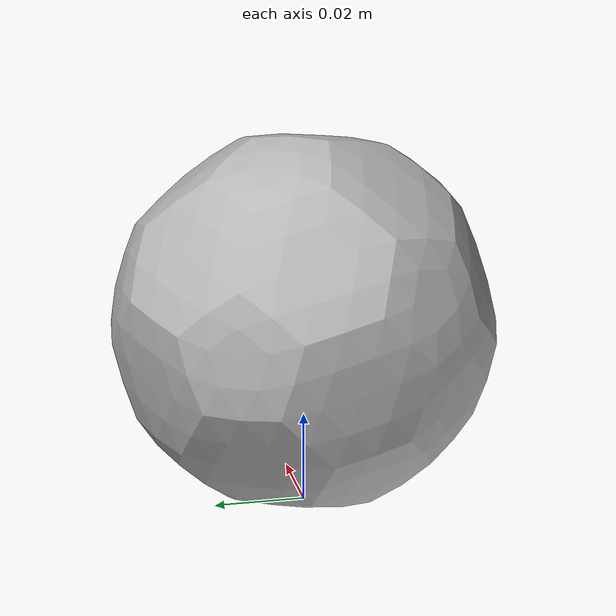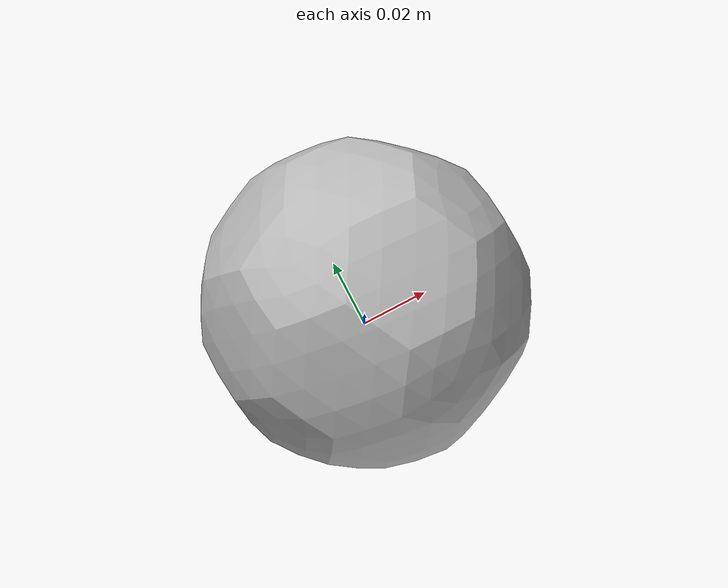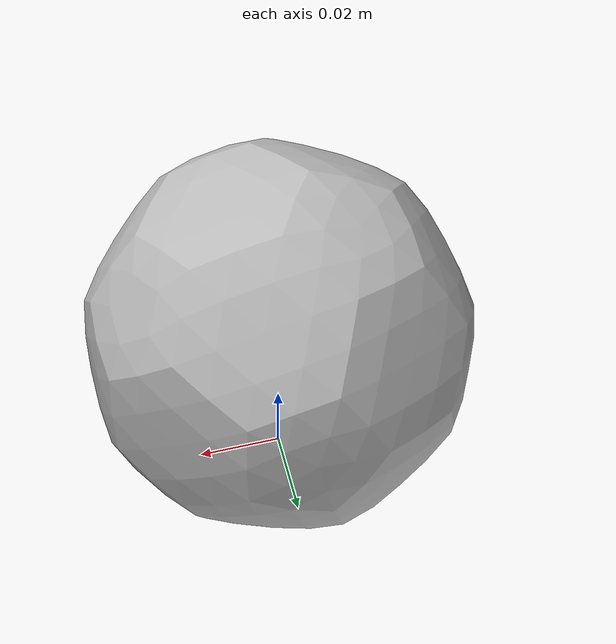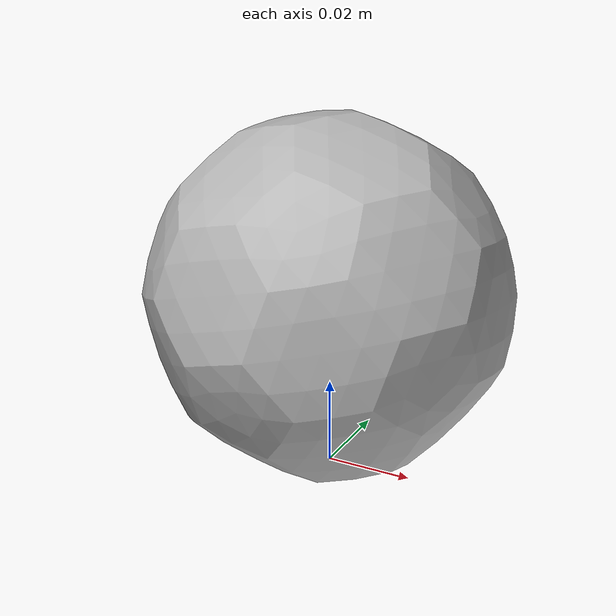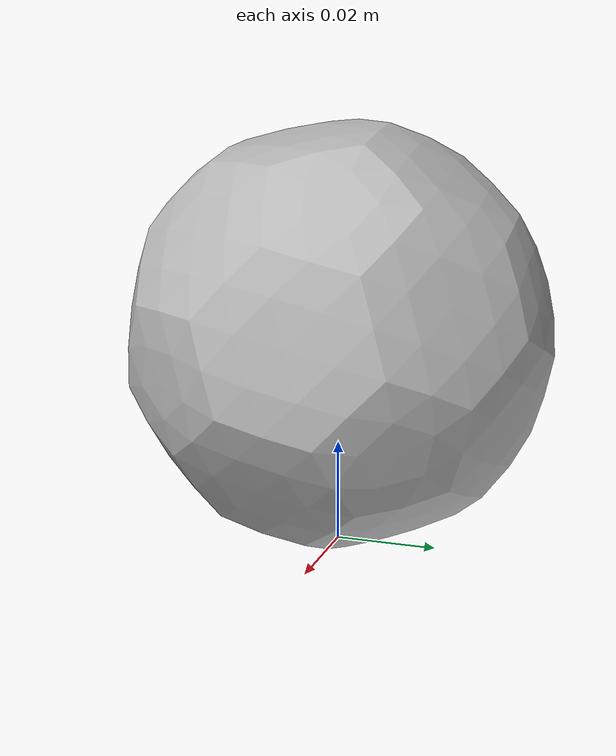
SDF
<?xml version='1.0'?>
<sdf version='1.6'>
  <model name='soccer_ball'>
    <link name='soccer_ball_link'>
      <pose>0 0 0 0 0 0</pose>
      <!-- inertia based on solid sphere 2/5 mr^2 -->
      <inertial>
        <mass>0.026</mass>
        <inertia>
          <ixx>1.664e-05</ixx>
          <iyy>1.664e-05</iyy>
          <izz>1.664e-05</izz>
          <ixy>0</ixy>
          <ixz>0</ixz>
          <iyz>0</iyz>
        </inertia>
      </inertial>
      <!-- approximate rolling friction -->
      <velocity_decay>
        <linear>0.0001</linear>
        <angular>0.005</angular>
      </velocity_decay>
      <visual name='visual'>
        <geometry>
          <mesh>
            <scale>0.042 0.042 0.042</scale>
            <uri>model://robocup_3Dsim_ball/meshes/ball.dae</uri>
          </mesh>
        </geometry>
      </visual>
      <collision name='collision'>
        <geometry>
          <sphere>
            <radius>0.042</radius>
          </sphere>
        </geometry>
        <surface>
          <friction>
            <ode>
              <mu>0.9</mu>
              <mu2>0.9</mu2>
              <fdir1>1 0 0</fdir1>
              <slip1>0.6</slip1>
              <slip2>0</slip2>
            </ode>
            <torsional>
              <coefficient>1</coefficient>
              <patch_radius>0</patch_radius>
              <surface_radius>0.01</surface_radius>
              <use_patch_radius>0</use_patch_radius>
              <ode>
                <slip>0</slip>
              </ode>
            </torsional>
          </friction>
          <bounce>
            <restitution_coefficient>0.8</restitution_coefficient>
            <threshold>0.01</threshold>
          </bounce>
          <contact>
	    <ode>
              <soft_cfm>0.05</soft_cfm>
              <soft_erp>0.5</soft_erp>
              <kp>1e+13</kp>
              <kd>1</kd>
              <max_vel>100</max_vel>
              <min_depth>0.001</min_depth>
            </ode>
            <bullet>
              <split_impulse>1</split_impulse>
              <split_impulse_penetration_threshold>-0.01</split_impulse_penetration_threshold>
              <soft_cfm>0.05</soft_cfm>
              <soft_erp>0.5</soft_erp>
              <kp>1e+13</kp>
              <kd>1</kd>
            </bullet>
          </contact>
        </surface>
      </collision>
    </link>
    <static>0</static>
    <pose frame=''>0 0 0.042 0 0 0</pose>
  </model>
</sdf>
